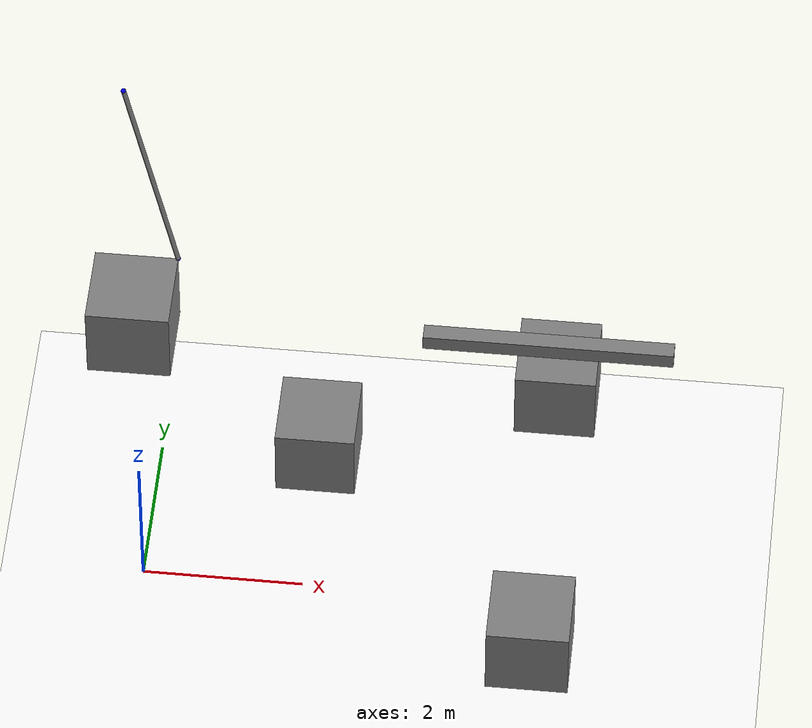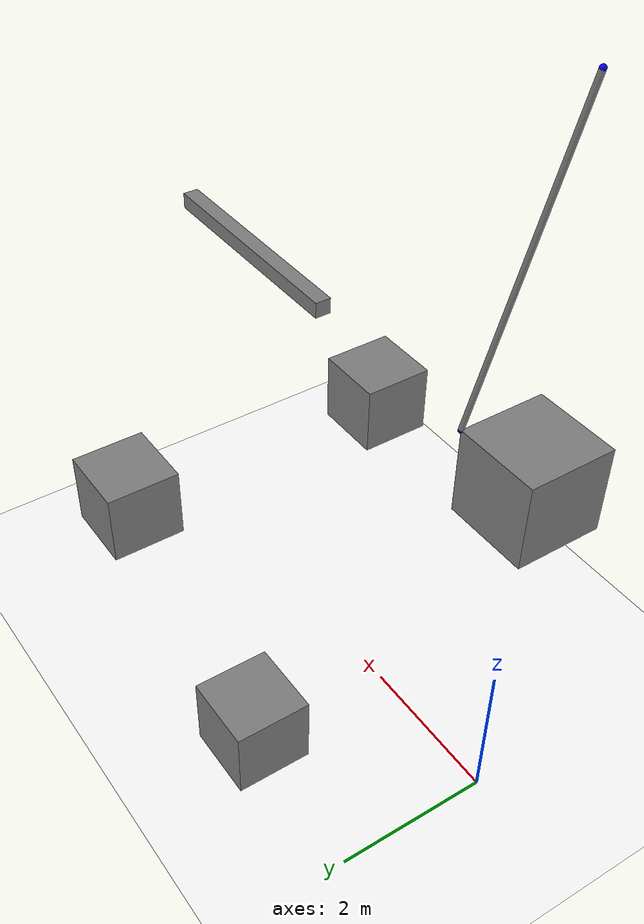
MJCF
<mujoco>
    <compiler autolimits="true"/>
    <option density="1000"/>

    <worldbody>
      <geom type="plane" size="10 10 .1" rgba="1 1 1 1"/>
      <light pos="0 0 20"/>
      <site name="anchor_tendon" pos="0 0 9" size="0.03" rgba="0 0 1 1"/>
      <body name="body_hinge" pos="5 0 3">
        <geom type="box" size="1.5 .1 .1" pos="0 0 2.0"/>
        <joint name="hinge" type="hinge" pos="0 0 2.0" axis="0 1 0" range="-25 5"/>
      </body>
      <body name="body_tendon" pos="0 0 5">
        <freejoint/>
        <geom type="box" size=".5 .5 .5"/>
        <site name="box_tendon" pos=".5 .5 .5" rgba="0 0 1 1" size="0.03"/>
      </body>
      <body name="body_slider" pos="5 -2 2">
        <geom type="box" size=".5 .5 .5"/>
        <joint name="slider" type="slide" pos=".5 0 0" axis="1 0 0" range="-25 5"/>
      </body>
      <body name="body_site" pos="2 2 .5">
        <freejoint/>
        <geom type="box" size=".5 .5 .5"/>
        <site name="box_site" pos="0 0 .3" rgba="0 0 1 1" size="0.1"/>
      </body>
      <body name="body_stateless" pos="5 2 2">
        <geom type="box" size=".5 .5 .5"/>
        <joint name="stateless" type="slide" pos=".5 0 0" axis="1 0 0" range="-25 5"/>
      </body>
    </worldbody>

    <tendon>
      <spatial name="tendon" limited="true" range="0 4" damping="100"  width="0.03">
        <site site="anchor_tendon"/>
        <site site="box_tendon"/>
      </spatial>
    </tendon>

    <actuator>
      <general name="stateless" joint="stateless" ctrllimited="true" ctrlrange="-20 20"/>
      <general name="hinge" joint="hinge" dyntype="integrator" ctrllimited="true" ctrlrange="-20 20"/>
      <muscle name="tendon" tendon="tendon" ctrllimited="true" ctrlrange="0 2"/>
      <general name="slider" joint="slider" dyntype="integrator" ctrllimited="true" ctrlrange="-20 20"/>
      <general name="site" site="box_site" dyntype="integrator" gear="0 0 1 0 0 0" ctrllimited="true" ctrlrange="0 10000"/>
    </actuator>
  </mujoco>
